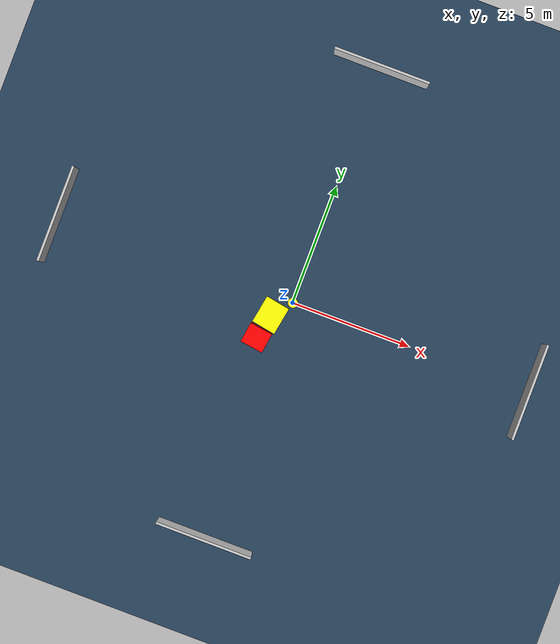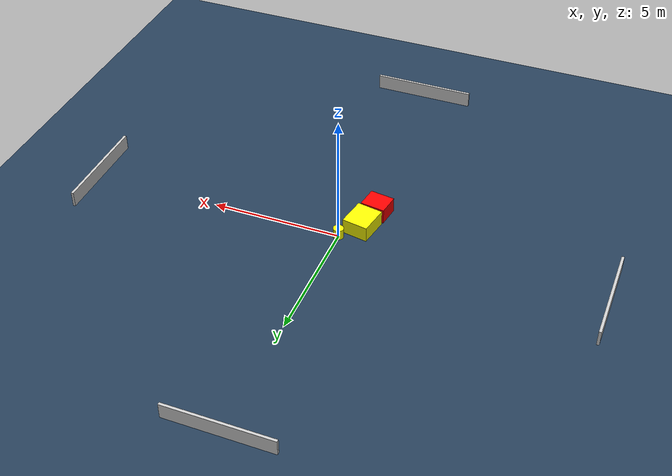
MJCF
<?xml version="1.0" ?>
<mujoco model="generated_environment">
  <option timestep="0.01" integrator="RK4" cone="elliptic"/>
  <default>
    <geom density="1"/>
  </default>
  <asset>
    <texture builtin="gradient" height="3072" name="skybox" rgb1="0.3 0.5 0.7" rgb2="0 0 0" type="skybox" width="512"/>
    <texture builtin="checker" height="300" name="groundplane" rgb1="0.2 0.3 0.4" rgb2="0.1 0.2 0.3" type="2d" width="300"/>
    <material name="groundplane" reflectance="0.2" texrepeat="5 5" texture="groundplane"/>
  </asset>
  <worldbody>
    <light dir="0 0 -1" directional="true" pos="0 0 1.5"/>
    <geom condim="3" friction="0.5 0.005 0.001" material="groundplane" name="floor" pos="0 0 0" size="0 0 0.05" type="plane"/>
    <body name="walls">
      <geom name="wall_1" condim="4" pos="-10.0 0.0 0.3" rgba="0.800000011920929 0.800000011920929 0.800000011920929 1.0" size="0.05 2.0 0.3" type="box"/>
      <geom name="wall_2" condim="4" pos="10.0 0.0 0.3" rgba="0.800000011920929 0.800000011920929 0.800000011920929 1.0" size="0.05 2.0 0.3" type="box"/>
      <geom name="wall_3" condim="4" pos="0.0 -10.0 0.3" rgba="0.800000011920929 0.800000011920929 0.800000011920929 1.0" size="2.0 0.05 0.3" type="box"/>
      <geom name="wall_4" condim="4" pos="0.0 10.0 0.3" rgba="0.800000011920929 0.800000011920929 0.800000011920929 1.0" size="2.0 0.05 0.3" type="box"/>
    </body>
    <body name="robot">
      <joint name="joint_x" type="slide" pos="0 0 0" axis="1 0 0"/>
      <joint name="joint_y" type="slide" pos="0 0 0" axis="0 1 0"/>
      <geom name="robot" type="cylinder" pos="0.0 0.0 0.2" size="0.2 0.2 0.0" mass="5.0" friction="1.0 0.005 0.0001" condim="4" rgba="1.0 1.0 0.0 1.0"/>
    </body>
    <body name="obstacle_1_movable">
      <geom name="obstacle_1_movable" condim="4" pos="-0.6495581395020473 -0.7578389030327461 0.3" euler="0 0 79.9424720045214" friction="0.0 0.005 0.001" rgba="1.0 1.0 0.0 1.0" size="0.5743816316430879 0.5001796057227931 0.3" type="box" mass="0.1"/>
      <joint type="free"/>
    </body>
    <body name="obstacle_2_static">
      <geom name="obstacle_2_static" condim="4" pos="-0.8641557969358825 -1.7890019283078722 0.3" euler="0 0 351.82918078539024" friction="0.0 0.005 0.001" rgba="1.0 0.0 0.0 1.0" size="0.4751100696883749 0.41563348980635056 0.3" type="box"/>
    </body>
  </worldbody>
  <actuator>
    <motor name="actuator_x" joint="joint_x" gear="1" ctrlrange="-1 1"/>
    <motor name="actuator_y" joint="joint_y" gear="1" ctrlrange="-1 1"/>
  </actuator>
</mujoco>
